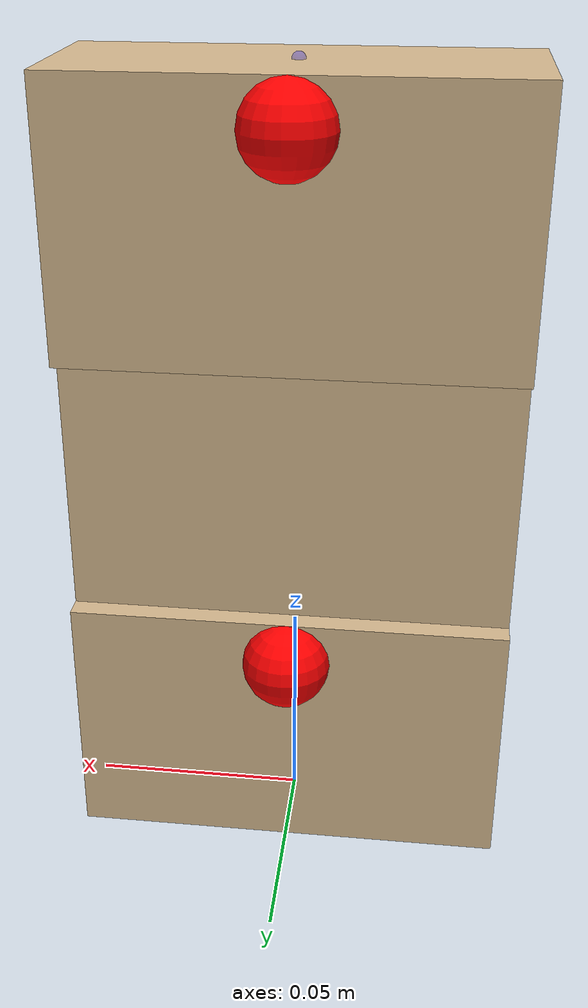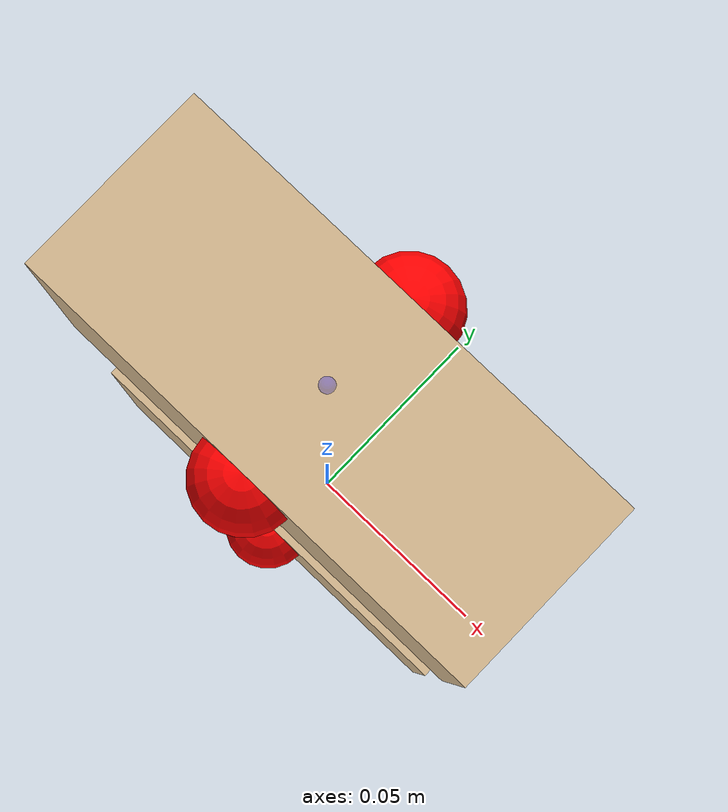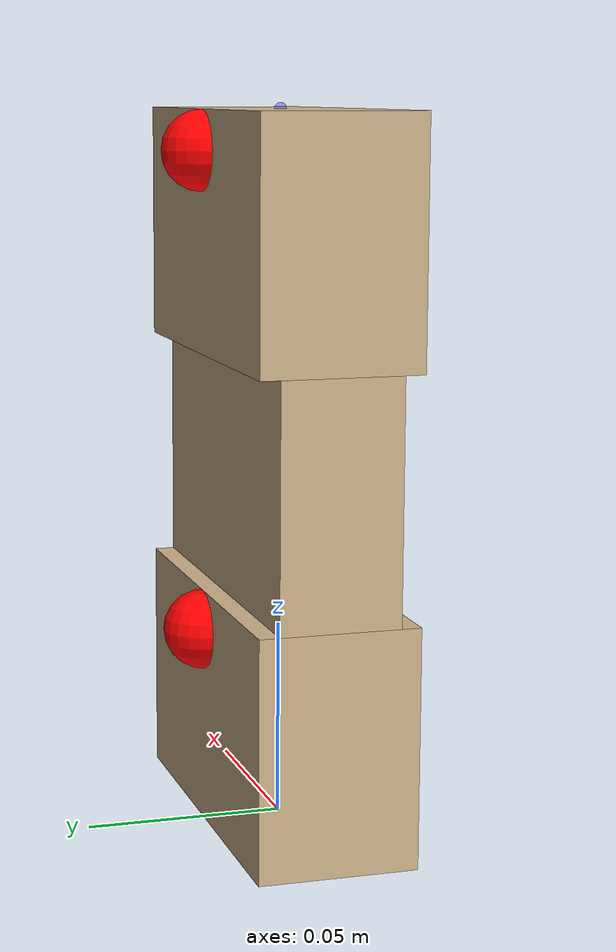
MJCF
<mujoco model="three_blocks">
  <custom>
    <numeric data="-0.25 0.0 0.030073 1.0 0.0 0.0 0.0" name="1_block_l_initpos" />
    <numeric data=" -0.05 0.0 0.030073 1.0 0.0 0.0 0.0" name="2_block_m_initpos" />
    <numeric data=" 0.25 0.0 0.030073 1.0 0.0 0.0 0.0" name="3_block_r_initpos" />
  </custom>
  <asset>
    <texture file="../textures/light-wood.png" name="tex-light-wood" type="2d" />
    <material name="light-wood" reflectance="0.5" texrepeat="20 20" texture="tex-light-wood" texuniform="true" />
  </asset>
  <equality>
    <weld active="false" body1="1_block_l" body2="2_block_m" solimp="1 1 0.5" solref="0.01 0.3" />
    <weld active="false" body1="1_block_l" body2="3_block_r" solimp="1 1 0.5" solref="0.01 0.3" />
    <weld active="false" body1="2_block_m" body2="3_block_r" solimp="1 1 0.5" solref="0.01 0.3" />
  </equality>
  <worldbody>
    <body name="1_block_l" pos="0.0 0.0 0.03" quat="1 0 0 0">
      <geom density="100" material="light-wood" name="1_block_l_geom" pos="0 0 0" rgba="0.82 0.71 0.55 1" size="0.05 0.02 0.03" solref="0.001 1" type="box" />
      <site name="1_block_l_ltgt_site0" pos="0 -0.02 0.02" size="0.01 0.01 0.01" rgba="1 0 0 1" type="sphere" group="1"></site>
      <site name="1_block_l_rtgt_site0" pos="0 0.02 0.02" size="0.01 0.01 0.01" rgba="1 0 0 1" type="sphere" group="1"></site>
      <site name="left-mid,0,180,conn_site2" pos="0. 0. 0.03" quat="1 0 0 0" rgba="0.9019 0.0980 0.2941 0.3" size="0.01" />
      <site name="left-right,0,180,conn_site2" pos="0. 0. 0.03" quat="1 0 0 0" rgba="0.9019 0.0980 0.2941 0.3" size="0.01" />
      <site name="1_block_l_bottom_site" pos="0.0 0.0 -0.03" rgba="0 0 1 0.3" size="0.0015" />
      <site name="1_block_l_top_site" pos="0.0 0.0 0.03" rgba="0 0 1 0.3" size="0.0015" />
      <site name="1_block_l_horizontal_radius_site" pos="0. 0. 0." rgba="0 0 1 0." size="0.05" />
    </body>
    <body name="2_block_m" pos="0.0 0.0 0.09" quat="1 0 0 0">
      <geom density="100" material="light-wood" name="2_block_m_geom" pos="0 0 0" rgba="0.82 0.71 0.55 1" size="0.05 0.015 0.03" solref="0.001 1" type="box" />
      <site name="mid-left,0,180,conn_site2" pos="0. 0. -0.03" quat="1 0 0 0" rgba="0.9019 0.0980 0.2941 0.3" size="0.01" />
      <site name="mid-right,0,180,conn_site2" pos="0. 0. -0.03" quat="1 0 0 0" rgba="0.9019 0.0980 0.2941 0.3" size="0.01" />
      <site name="2_block_m_bottom_site" pos="0.0 0.0 -0.03" rgba="0 0 1 0.3" size="0.0015" />
      <site name="2_block_m_top_site" pos="0.0 0.0 0.03" rgba="0 0 1 0.3" size="0.0015" />
      <site name="2_block_m_horizontal_radius_site" pos="0. 0. 0." rgba="0 0 1 0." size="0.05" />
    </body>
    <body name="3_block_r" pos="0.0 0.0 0.15" quat="1 0 0 0">
      <geom density="100" material="light-wood" name="3_block_r_geom" pos="0 0 0" rgba="0.82 0.71 0.55 1" size="0.05 0.02 0.03" solref="0.001 1" type="box" />
      <site name="3_block_r_ltgt_site0" pos="0 -0.02 0.02" size="0.01 0.01 0.01" rgba="1 0 0 1" type="sphere" group="1"></site>
      <site name="3_block_r_rtgt_site0" pos="0 0.02 0.02" size="0.01 0.01 0.01" rgba="1 0 0 1" type="sphere" group="1"></site>
      <site name="3_block_r_bottom_site" pos="0.0 0.0 -0.03" rgba="0 0 1 0.3" size="0.0015" />
      <site name="3_block_r_top_site" pos="0.0 0.0 0.03" rgba="0 0 1 0.3" size="0.0015" />
      <site name="3_block_r_horizontal_radius_site" pos="0. 0. 0." rgba="0 0 1 0." size="0.05" />
    </body>
  </worldbody>
</mujoco>
